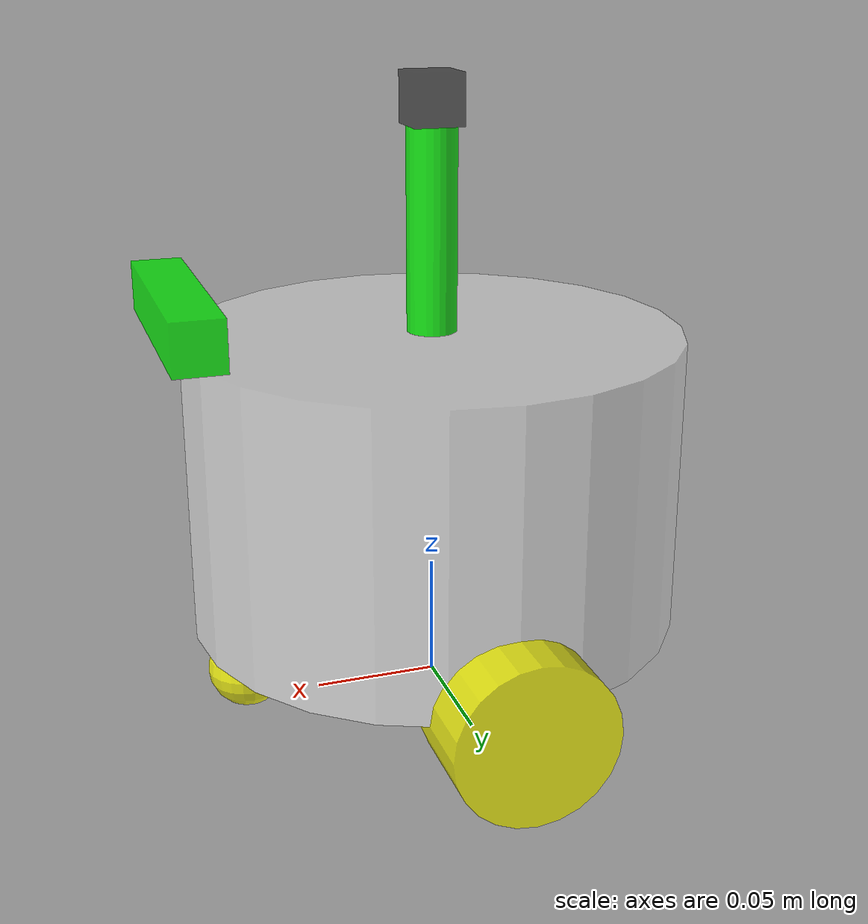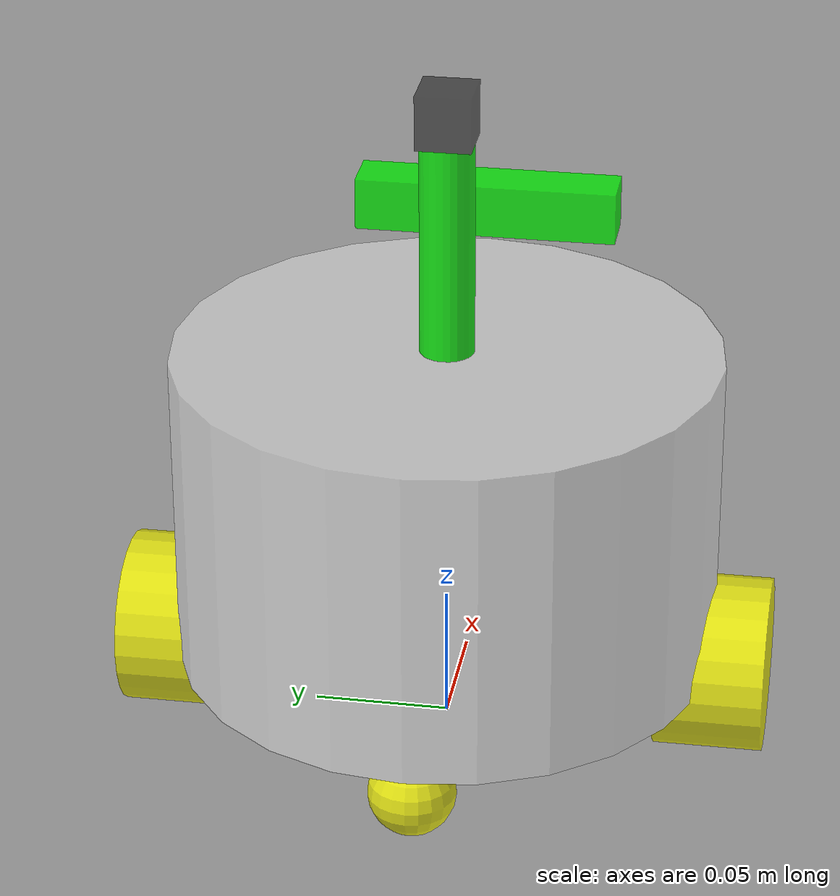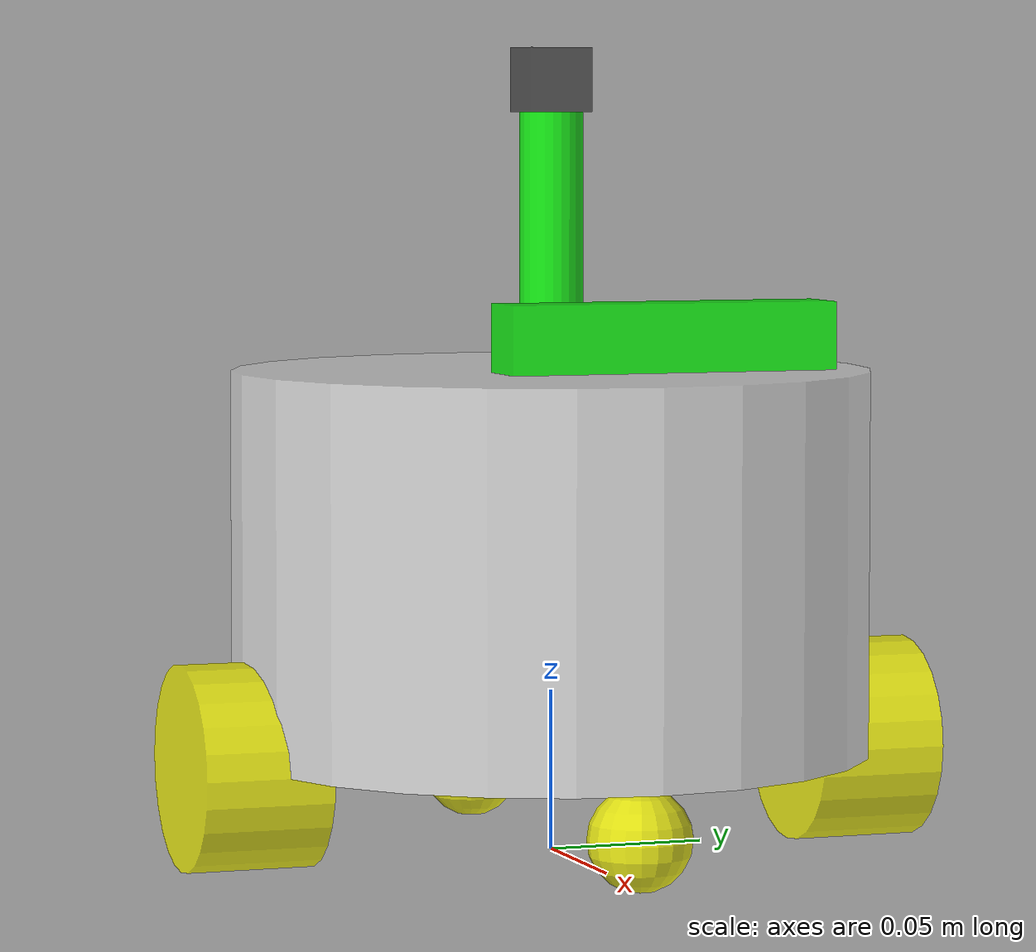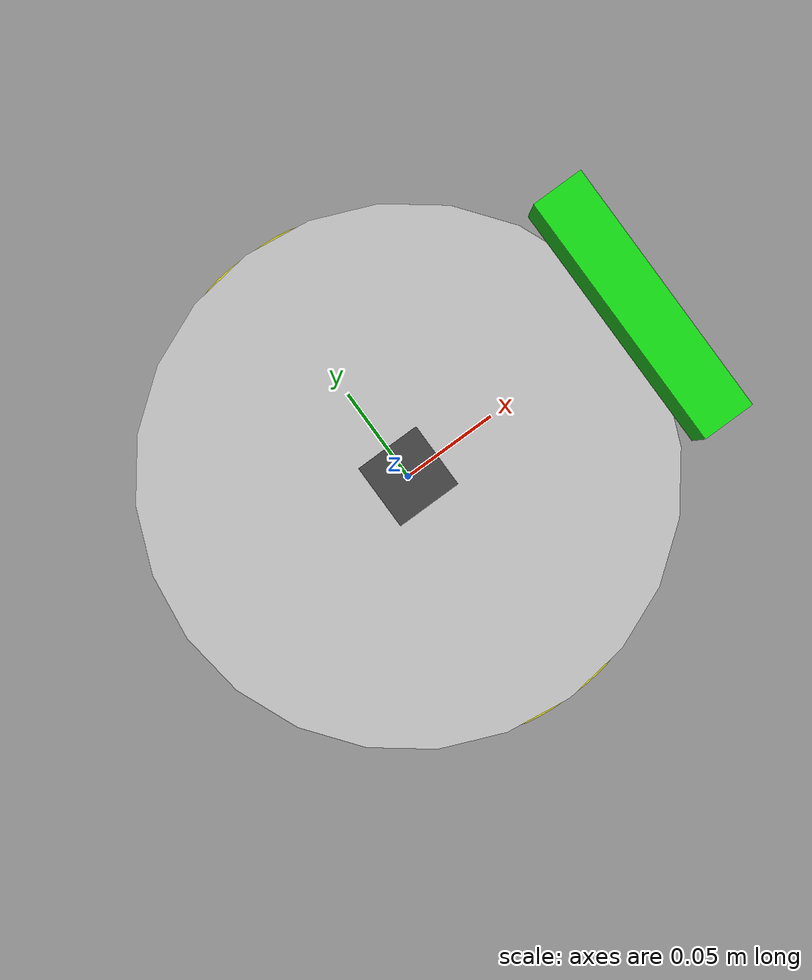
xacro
<?xml version="1.0"?>
<robot xmlns:xacro="http://www.ros.org/wiki/xacro" name="yozora_robot">

    <xacro:include filename="$(find simulation)/urdf/yozora_robot/base_robot.xacro"/>
    <xacro:include filename="$(find simulation)/urdf/yozora_robot/sensor/laser.xacro"/>
    <xacro:include filename="$(find simulation)/urdf/yozora_robot/sensor/imu.xacro"/>
    <xacro:include filename="$(find simulation)/urdf/yozora_robot/sensor/camera.xacro"/>

    <xacro:include filename="$(find simulation)/urdf/yozora_robot/actuator/wheel.xacro"/>
    <xacro:include filename="$(find simulation)/urdf/yozora_robot/actuator/caster.xacro"/>

    <xacro:include filename="$(find simulation)/urdf/yozora_robot/plugin/gazebo_control_plugin.xacro"/>
    <xacro:include filename="$(find simulation)/urdf/yozora_robot/plugin/gazebo_sensor_plugin.xacro"/>

    <xacro:base_macro length="0.12" radius="0.1" />
    <!-- 传感器 -->
    <xacro:imu_macro xyz="0 0 0.02" />
    <xacro:laser_macro xyz="0 0 0.10" />
    <xacro:camera_macro xyz="0.10 0 0.075" />

    <!-- 左轮：车身左侧 0.10m，下方 0.06m -->
    <xacro:wheel_macro xyz="0 0.10 -0.06" wheel_name="left" />
    <!-- 右轮：车身右侧 0.10m，下方 0.06m -->
    <xacro:wheel_macro xyz="0 -0.10 -0.06" wheel_name="right" />

    <!-- 前万向轮：车身前方 0.08m，下方 0.076m -->
    <xacro:caster_macro xyz="0.08 0.0 -0.076" caster_name="front" />
    <!-- 后万向轮：车身后方 0.08m，下方 0.076m -->
    <xacro:caster_macro xyz="-0.08 0.0 -0.076" caster_name="back" />

    <xacro:gazebo_control_plugin />
    <xacro:gazebo_sensor_plugin />

</robot>

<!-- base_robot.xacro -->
<robot xmlns:xacro="http://www.ros.org/wiki/xacro" >

    <xacro:include filename="$(find simulation)/urdf/yozora_robot/common_inertia.xacro" />

    <xacro:macro name="base_macro" params="radius length">

        <link name="base_footprint"/>

        <joint name="base_joint" type="fixed">
            <parent link="base_footprint"/>
            <child link="base_link"/>
            <origin xyz="0 0 ${length/2.0 + 0.032 - 0.001}" rpy="0 0 0"/>
        </joint>

        <link name="base_link">
            <visual>
                <origin xyz="0 0 0" rpy="0 0 0"/>
                <geometry>
                    <cylinder radius="${radius}" length="${length}"/>
                </geometry>
                <material name="gray">
                    <color rgba="1.0 1.0 1.0 0.5"/>
                </material>
            </visual>
            <collision>
                <origin xyz="0 0 0" rpy="0 0 0"/>
                <geometry>
                    <cylinder radius="${radius}" length="${length}"/>
                </geometry>
                <material name="gray">
                    <color rgba="1.0 1.0 1.0 0.5"/>
                </material>
            </collision>
            <xacro:cylinder_inertia m="1.0" r="${radius}" h="${length}" />
        </link>

    </xacro:macro>
</robot>

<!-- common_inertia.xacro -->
<robot xmlns:xacro="http://www.ros.org/wiki/xacro">

    <!-- 长方体惯性宏 -->
    <!-- m: 质量(kg), w: 宽(m), h: 高(m), d: 长(m) -->
    <xacro:macro name="box_inertia" params="m w h d">
        <inertial>
            <mass value="${m}" />
            <inertia ixx="${m/12.0 * (h*h + d*d)}" ixy="0.0" ixz="0.0"
                     iyy="${m/12.0 * (w*w + d*d)}" iyz="0.0"
                     izz="${m/12.0 * (w*w + h*h)}" />
        </inertial>
    </xacro:macro>

    <!-- 圆柱体惯性宏 -->
    <!-- m: 质量(kg), r: 半径(m), h: 高度(m) -->
    <xacro:macro name="cylinder_inertia" params="m r h">
        <inertial>
            <mass value="${m}" />
            <inertia ixx="${m/12.0 * (3*r*r + h*h)}" ixy="0.0" ixz="0.0"
                     iyy="${m/12.0 * (3*r*r + h*h)}" iyz="0.0"
                     izz="${m/2.0 * r*r}" />
        </inertial>
    </xacro:macro>

    <!-- 球体惯性宏 -->
    <!-- m: 质量(kg), r: 半径(m) -->
    <xacro:macro name="sphere_inertia" params="m r">
        <inertial>
            <mass value="${m}" />
            <inertia ixx="${2.0/5.0 * m * r*r}" ixy="0.0" ixz="0.0"
                     iyy="${2.0/5.0 * m * r*r}" iyz="0.0"
                     izz="${2.0/5.0 * m * r*r}" />
        </inertial>
    </xacro:macro>

</robot>

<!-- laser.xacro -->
<robot xmlns:xacro="http://www.ros.org/wiki/xacro">
    <xacro:macro name="laser_macro" params="xyz">

    <xacro:include filename="$(find simulation)/urdf/yozora_robot/common_inertia.xacro" />

        <link name="laser_cylinder_link">
            <visual>
                <origin xyz="0 0 0" rpy="0 0 0" />
                <geometry>
                    <cylinder length="0.10" radius="0.01" />
                </geometry>
                <material name="green">
                    <color rgba="0.0 1.0 0.0 0.8" />
                </material>
            </visual>
            <collision>
                <origin xyz="0 0 0" rpy="0 0 0" />
                <geometry>
                    <cylinder length="0.10" radius="0.01" />
                </geometry>
                <material name="green">
                    <color rgba="0.0 1.0 0.0 0.8" />
                </material>
            </collision>
            <xacro:cylinder_inertia m="0.05" r="0.01" h="0.10"/>

        </link>

        <joint name="laser_cylinder_joint" type="fixed">
            <parent link="base_link" />
            <child link="laser_cylinder_link" />
            <origin xyz="${xyz}" rpy="0 0 0" />
        </joint>

        <link name="laser_link">
            <visual>
                <origin xyz="0 0 0" rpy="0 0 0"/>
                <geometry>
                    <box size="0.02 0.02 0.02"/>
                </geometry>
                <material name="black">
                    <color rgba="0.0 0.0 0.0 0.5"/>
                </material>
            </visual>
            <collision>
                <origin xyz="0 0 0" rpy="0 0 0"/>
                <geometry>
                    <box size="0.02 0.02 0.02"/>
                </geometry>
                <material name="black">
                    <color rgba="0.0 0.0 0.0 0.5"/>
                </material>
            </collision>
            <xacro:cylinder_inertia m="0.10" r="0.02" h="0.02"/>
        </link>

        <joint name="laser_joint" type="fixed">
            <parent link="laser_cylinder_link"/>
            <child link="laser_link"/>
            <origin xyz="0 0 0.05" rpy="0 0 0"/>
        </joint>

        <gazebo reference="laser_cylinder_link">
            <material>Gazebo/Black</material>
        </gazebo>

        <gazebo reference="laser_link">
            <material>Gazebo/Black</material>
        </gazebo>

        </xacro:macro>
</robot>

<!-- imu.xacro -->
<robot xmlns:xacro="http://www.ros.org/wiki/xacro">
    <xacro:macro name="imu_macro" params="xyz">

    <xacro:include filename="$(find simulation)/urdf/yozora_robot/common_inertia.xacro" />

            <link name="imu_link">
                <visual>
                    <origin xyz="0 0 0" rpy="0 0 0"/>
                    <geometry>
                        <box size="0.02 0.02 0.02"/>
                    </geometry>
                    <material name="black">
                        <color rgba="0.0 0.0 0.0 0.5"/>
                    </material>
                </visual>
                <collision>
                    <origin xyz="0 0 0" rpy="0 0 0"/>
                    <geometry>
                        <box size="0.02 0.02 0.02"/>
                    </geometry>
                    <material name="black">
                        <color rgba="0.0 0.0 0.0 0.5"/>
                    </material>
                </collision>
                <xacro:box_inertia m="0.01" w="0.02" h="0.02" d="0.02" />
            </link>

            <joint name="imu_joint" type="fixed">
                <parent link="base_link"/>
                <child link="imu_link"/>
                <origin xyz="${xyz}" rpy="0 0 0"/>
            </joint>

        </xacro:macro>
</robot>

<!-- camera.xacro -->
<robot xmlns:xacro="http://www.ros.org/wiki/xacro">
    <xacro:macro name="camera_macro" params="xyz">

    <xacro:include filename="$(find simulation)/urdf/yozora_robot/common_inertia.xacro" />

            <link name="camera_link">
                <visual>
                    <origin xyz="0 0 0" rpy="0 0 0"/>
                    <geometry>
                        <box size="0.02 0.10 0.02"/>
                    </geometry>
                    <material name="green">
                        <color rgba="0.0 1.0 0.0 0.8"/>
                    </material>
                </visual>
                <collision>
                    <origin xyz="0 0 0" rpy="0 0 0"/>
                    <geometry>
                        <box size="0.02 0.10 0.02"/>
                    </geometry>
                    <material name="green">
                        <color rgba="0.0 1.0 0.0 0.8"/>
                    </material>
                </collision>
                <xacro:box_inertia m="0.1" w="0.02" h="0.10" d="0.02"/>
            </link>

            <joint name="camera_joint" type="fixed">
                <parent link="base_link"/>
                <child link="camera_link"/>
                <origin xyz="${xyz}" rpy="0 0 0"/>
            </joint>

            <link name="camera_optical_link" />

            <joint name="camera_optical_joint" type="fixed">
                <parent link="camera_link" />
                <child link="camera_optical_link" />
                <!-- 绕 X 轴旋转 -90°，绕 Z 轴旋转 -90°，使 Z 轴朝前 -->
                <origin xyz="0 0 0" rpy="${-pi/2} 0 ${-pi/2}" />
            </joint>

        </xacro:macro>
</robot>

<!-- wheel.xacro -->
<robot xmlns:xacro="http://www.ros.org/wiki/xacro">
    <xacro:macro name="wheel_macro" params="xyz wheel_name">

    <xacro:include filename="$(find simulation)/urdf/yozora_robot/common_inertia.xacro" />

            <link name="${wheel_name}_wheel_link">
                <visual>
                    <origin xyz="0 0 0" rpy="1.57079 0 0" />
                    <geometry>
                        <cylinder length="0.04" radius="0.032" />
                    </geometry>
                    <material name="yellow">
                        <color rgba="1.0 1.0 0.0 0.8" />
                    </material>
                </visual>
                <collision>
                    <origin xyz="0 0 0" rpy="1.57079 0 0" />
                    <geometry>
                        <cylinder length="0.04" radius="0.032" />
                    </geometry>
                    <material name="yellow">
                        <color rgba="1.0 1.0 0.0 0.8" />
                    </material>
                </collision>
                <xacro:cylinder_inertia m="0.05" r="0.032" h="0.04" />
            </link>

            <joint name="${wheel_name}_wheel_joint" type="continuous">
                <parent link="base_link"/>
                <child link="${wheel_name}_wheel_link"/>
                <origin xyz="${xyz}" rpy="0 0 0"/>
                <axis xyz="0 1 0" />
            </joint>

             <gazebo reference="${wheel_name}_wheel_link">
                <mu1 value="20.0" />        <!-- 切向摩擦系数 -->
                <mu2 value="20.0" />        <!-- 法向摩擦系数 -->
                <kp value="1000000000.0" /> <!-- 接触刚度系数 -->
                <kd value="1.0" />          <!-- 阻尼系数 -->
            </gazebo>

        </xacro:macro>
</robot>

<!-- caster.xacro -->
<robot xmlns:xacro="http://www.ros.org/wiki/xacro">
    <xacro:macro name="caster_macro" params="xyz caster_name">

    <xacro:include filename="$(find simulation)/urdf/yozora_robot/common_inertia.xacro" />

            <link name="${caster_name}_caster_link">
                <visual>
                    <origin xyz="0 0 0" rpy="0 0 0" />
                    <geometry>
                        <sphere radius="0.016" />
                    </geometry>
                    <material name="yellow">
                        <color rgba="1.0 1.0 0.0 0.8" />
                    </material>
                </visual>
                <collision>
                    <origin xyz="0 0 0" rpy="0 0 0"/>
                    <geometry>
                        <sphere radius="0.016"/>
                    </geometry>
                    <material name="yellow">
                        <color rgba="1.0 1.0 0.0 0.8"/>
                    </material>
                </collision>
                <xacro:sphere_inertia m="0.015" r="0.016" />
            </link>

            <joint name="${caster_name}_caster_joint" type="fixed">
                <parent link="base_link"/>
                <child link="${caster_name}_caster_link"/>
                <origin xyz="${xyz}" rpy="0 0 0"/>
            </joint>

            <gazebo reference="${caster_name}_caster_link">
                <mu1 value="0.0" />
                <mu2 value="0.0" />
                <kp value="1000000000.0" />
                <kd value="1.0" />
            </gazebo>

        </xacro:macro>
</robot>
